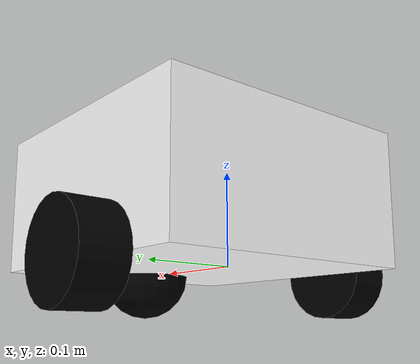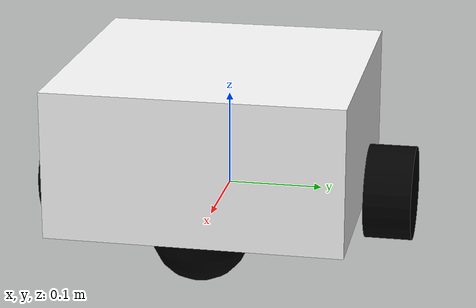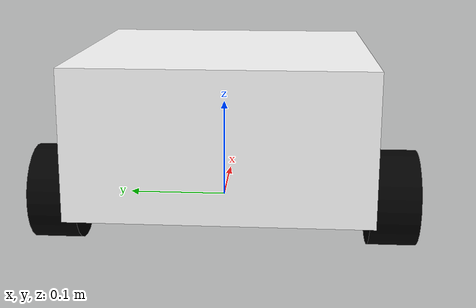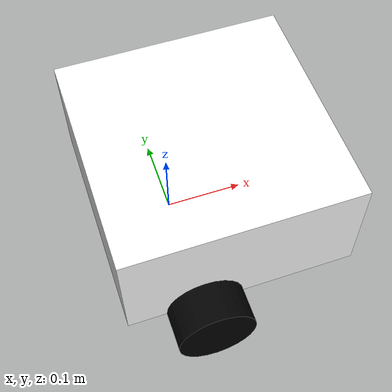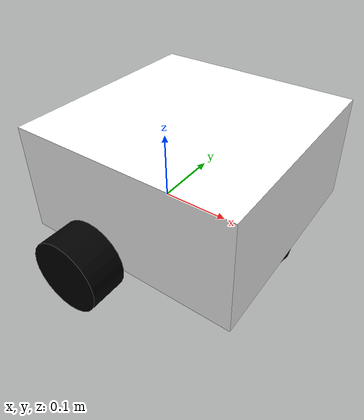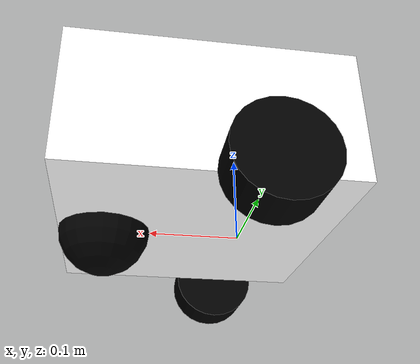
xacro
<?xml version="1.0"?>
<robot xmlns:xacro="http://www.ros.org/wiki/xacro">

   <xacro:include filename="inertial_macros.xacro"/>
   <xacro:property name="pi" value="3.14159265359"/>

    <xacro:property name="chassis_length" value="0.335"/>
    <xacro:property name="chassis_width" value="0.265"/>
    <xacro:property name="chassis_height" value="0.138"/>
    <xacro:property name="chassis_mass" value="1.0"/>
    <xacro:property name="wheel_radius" value="0.033"/>
    <xacro:property name="wheel_thickness" value="0.026"/>
    <xacro:property name="wheel_mass" value="0.05"/>
    <xacro:property name="wheel_offset_x" value="0.226"/>
    <xacro:property name="wheel_offset_y" value="0.1485"/>
    <xacro:property name="wheel_offset_z" value="0.01"/>
    <xacro:property name="caster_wheel_radius" value="0.01"/>
    <xacro:property name="caster_wheel_mass" value="0.01"/>
    <xacro:property name="caster_wheel_offset_x" value="0.075"/>
    <xacro:property name="caster_wheel_offset_z" value="${wheel_offset_z - wheel_radius + caster_wheel_radius}"/>

   <material name="white">
    <color rgba="1 1 1 1" />
   </material>

   <material name="orange">
    <color rgba="1 0.3 0.1 1" />
   </material>

   <material name="blue">
    <color rgba="0.2 0.2 1 1" />
   </material>

   <material name="black">
    <color rgba="0 0 0 1" />
   </material>

   <!--base link-->

   <link name="base_link">

   </link>

   <!--chassis link-->
   <joint name="chassis_joint" type="fixed">
      <parent link="base_link"/>
      <child link="chassis"/>
      <origin xyz="-0.1 0 0"/>
   </joint>

   <link name="chassis">
     <visual>
       <origin xyz="0.15 0 0.075"/>
       <geometry>
          <box size ="0.3 0.3 0.15"/>
       </geometry>
       <material name="white"/>

      </visual>
       <collision>
       <origin xyz="0.15 0 0.075"/>
       <geometry>
          <box size ="0.3 0.3 0.15"/>
       </geometry>

      </collision>
      <xacro:inertial_box mass="0.5" x="0.3" y="0.3" z="0.15">
         <origin xyz="0.15 0 0.075" rpy="0 0 0"/>
      </xacro:inertial_box>
   </link>

   <gazebo reference ="chassis">
    <material>Gazebo/Orange </material>
   </gazebo>

   <!--LEFT WHEEL LINK-->
   <joint name="wheel_left_joint" type="continuous">
      <parent link="base_link"/>
      <child link="wheel_left"/>
      <origin xyz="0 0.175 0" rpy="-${pi/2} 0 0"/>
      <axis xyz="0 0 1"/>
   </joint>

   <link name="wheel_left">
        <visual>
          <geometry>
            <cylinder length="0.05" radius="0.05"/>
          </geometry>
         <material name="black"/>
          </visual>
         <collision>
          <geometry>
            <cylinder length="0.05" radius="0.05"/>
          </geometry>
          </collision>
          <xacro:inertial_cylinder mass="0.1" length="0.04" radius="0.05">
             <origin xyz="0 0 0" rpy="0 0 0"/>
          </xacro:inertial_cylinder>
   </link>

   <gazebo reference ="wheel_left">
    <material>Gazebo/Black </material>

   </gazebo>
<!--RIGHT WHEEL LINK-->
   <joint name="wheel_right_joint" type="continuous">
      <parent link="base_link"/>
      <child link="wheel_right"/>
      <origin xyz="0 -0.175 0" rpy="${pi/2} 0 0"/>
      <axis xyz="0 0 -1"/>
   </joint>

   <link name="wheel_right">
        <visual>
          <geometry>
            <cylinder length="0.05" radius="0.05"/>
          </geometry>
         <material name="black"/>
          </visual>
          <collision>
          <geometry>
            <cylinder length="0.05" radius="0.05"/>
          </geometry>
          </collision>
          <xacro:inertial_cylinder mass="0.1" length="0.04" radius="0.05">
             <origin xyz="0 0 0" rpy="0 0 0"/>
          </xacro:inertial_cylinder>

   </link>
   <gazebo reference ="wheel_right">
    <material>Gazebo/Black </material>
   </gazebo>

<!--CASTER WHEEL LINK-->
    <joint name="caster_wheel_joint" type="fixed">
      <parent link="chassis"/>
      <child link="caster_wheel"/>
      <origin xyz="0.25 0 0"/>
    </joint>

    <link name="caster_wheel">
        <visual>
            <geometry>
               <sphere radius="0.05"/>
            </geometry>
            <material name="black"/>
         </visual>

          <collision>
            <geometry>
               <sphere radius="0.05"/>
            </geometry>
         </collision>
         <xacro:inertial_sphere mass="0.1"  radius="0.05">
             <origin xyz="0 0 0" rpy="0 0 0"/>
          </xacro:inertial_sphere>
    </link>

   <gazebo reference ="caster_wheel">
     <material>Gazebo/Black </material>
     <mu1 value="0.001"/>
     <mu2 value="0.001"/>
   </gazebo>
</robot>
